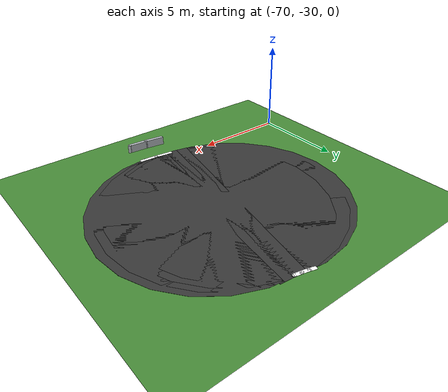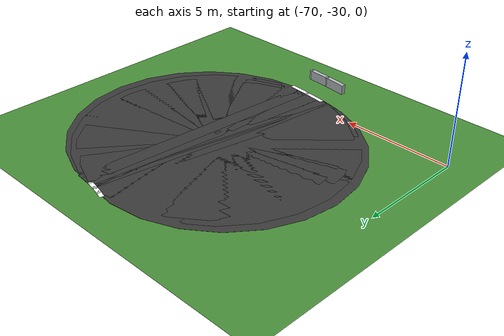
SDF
<sdf version="1.6">
 <world name="sem_silesia_ring_2026">
  <model name="ground_plane">
   <static>true</static>
   <link name="link">
    <collision name="collision">
     <geometry><plane><normal>0 0 1</normal><size>600 600</size></plane></geometry>
     <surface><friction><ode><mu>0.6</mu><mu2>0.6</mu2></ode></friction></surface>
    </collision>
    <visual name="visual">
     <geometry><plane><normal>0 0 1</normal><size>600 600</size></plane></geometry>
     <material><ambient>0.28 0.55 0.22 1</ambient><diffuse>0.28 0.55 0.22 1</diffuse></material>
    </visual>
   </link>
  </model>
  <model name="road_L_jnt84">
   <static>true</static>
   <pose>-62.5989 -24.7268 0.0030 0 0 0</pose>
   <link name="link">
    <visual name="v">
     <geometry><cylinder><radius>6.0000</radius><length>0.0060</length></cylinder></geometry>
     <material><ambient>0.22 0.22 0.22 1</ambient><diffuse>0.22 0.22 0.22 1</diffuse></material>
    </visual>
    <collision name="c">
     <geometry><cylinder><radius>6.0000</radius><length>0.0060</length></cylinder></geometry>
     <surface><friction><ode><mu>0.9</mu><mu2>0.9</mu2></ode></friction></surface>
    </collision>
   </link>
  </model>
  <model name="road_L_s84">
   <static>true</static>
   <pose>-62.3851 -24.7703 0.0030 0 0 6.0912</pose>
   <link name="link">
    <visual name="v">
     <geometry><box><size>0.6957 12.0000 0.0060</size></box></geometry>
     <material><ambient>0.22 0.22 0.22 1</ambient><diffuse>0.22 0.22 0.22 1</diffuse></material>
    </visual>
    <collision name="c">
     <geometry><box><size>0.6957 12.0000 0.0060</size></box></geometry>
     <surface><friction><ode><mu>0.9</mu><mu2>0.9</mu2></ode></friction></surface>
    </collision>
   </link>
  </model>
  <model name="road_L_jnt85">
   <static>true</static>
   <pose>-62.1706 -24.8101 0.0030 0 0 0</pose>
   <link name="link">
    <visual name="v">
     <geometry><cylinder><radius>6.0000</radius><length>0.0060</length></cylinder></geometry>
     <material><ambient>0.22 0.22 0.22 1</ambient><diffuse>0.22 0.22 0.22 1</diffuse></material>
    </visual>
    <collision name="c">
     <geometry><cylinder><radius>6.0000</radius><length>0.0060</length></cylinder></geometry>
     <surface><friction><ode><mu>0.9</mu><mu2>0.9</mu2></ode></friction></surface>
    </collision>
   </link>
  </model>
  <model name="road_L_s85">
   <static>true</static>
   <pose>-61.9554 -24.8461 0.0030 0 0 6.1261</pose>
   <link name="link">
    <visual name="v">
     <geometry><box><size>0.6957 12.0000 0.0060</size></box></geometry>
     <material><ambient>0.22 0.22 0.22 1</ambient><diffuse>0.22 0.22 0.22 1</diffuse></material>
    </visual>
    <collision name="c">
     <geometry><box><size>0.6957 12.0000 0.0060</size></box></geometry>
     <surface><friction><ode><mu>0.9</mu><mu2>0.9</mu2></ode></friction></surface>
    </collision>
   </link>
  </model>
  <model name="road_L_jnt86">
   <static>true</static>
   <pose>-61.7397 -24.8784 0.0030 0 0 0</pose>
   <link name="link">
    <visual name="v">
     <geometry><cylinder><radius>6.0000</radius><length>0.0060</length></cylinder></geometry>
     <material><ambient>0.22 0.22 0.22 1</ambient><diffuse>0.22 0.22 0.22 1</diffuse></material>
    </visual>
    <collision name="c">
     <geometry><cylinder><radius>6.0000</radius><length>0.0060</length></cylinder></geometry>
     <surface><friction><ode><mu>0.9</mu><mu2>0.9</mu2></ode></friction></surface>
    </collision>
   </link>
  </model>
  <model name="road_L_s86">
   <static>true</static>
   <pose>-61.5234 -24.9068 0.0030 0 0 6.1610</pose>
   <link name="link">
    <visual name="v">
     <geometry><box><size>0.6957 12.0000 0.0060</size></box></geometry>
     <material><ambient>0.22 0.22 0.22 1</ambient><diffuse>0.22 0.22 0.22 1</diffuse></material>
    </visual>
    <collision name="c">
     <geometry><box><size>0.6957 12.0000 0.0060</size></box></geometry>
     <surface><friction><ode><mu>0.9</mu><mu2>0.9</mu2></ode></friction></surface>
    </collision>
   </link>
  </model>
  <model name="road_L_jnt87">
   <static>true</static>
   <pose>-61.3066 -24.9315 0.0030 0 0 0</pose>
   <link name="link">
    <visual name="v">
     <geometry><cylinder><radius>6.0000</radius><length>0.0060</length></cylinder></geometry>
     <material><ambient>0.22 0.22 0.22 1</ambient><diffuse>0.22 0.22 0.22 1</diffuse></material>
    </visual>
    <collision name="c">
     <geometry><cylinder><radius>6.0000</radius><length>0.0060</length></cylinder></geometry>
     <surface><friction><ode><mu>0.9</mu><mu2>0.9</mu2></ode></friction></surface>
    </collision>
   </link>
  </model>
  <model name="road_L_s87">
   <static>true</static>
   <pose>-61.0894 -24.9524 0.0030 0 0 6.1959</pose>
   <link name="link">
    <visual name="v">
     <geometry><box><size>0.6957 12.0000 0.0060</size></box></geometry>
     <material><ambient>0.22 0.22 0.22 1</ambient><diffuse>0.22 0.22 0.22 1</diffuse></material>
    </visual>
    <collision name="c">
     <geometry><box><size>0.6957 12.0000 0.0060</size></box></geometry>
     <surface><friction><ode><mu>0.9</mu><mu2>0.9</mu2></ode></friction></surface>
    </collision>
   </link>
  </model>
  <model name="wl_Lo_s57">
   <static>true</static>
   <pose>-62.4017 -30.7426 0.0050 0 0 6.1523</pose>
   <link name="link">
    <visual name="v">
     <geometry><box><size>1.0185 0.2000 0.0040</size></box></geometry>
     <material><ambient>1 1 1 1</ambient><diffuse>1 1 1 1</diffuse></material>
    </visual>
    <collision name="c">
     <geometry><box><size>1.0185 0.2000 0.0040</size></box></geometry>
     <surface><friction><ode><mu>0.9</mu><mu2>0.9</mu2></ode></friction></surface>
    </collision>
   </link>
  </model>
  <model name="wl_Lo_jnt58">
   <static>true</static>
   <pose>-61.9233 -30.7992 0.0050 0 0 0</pose>
   <link name="link">
    <visual name="v">
     <geometry><cylinder><radius>0.1000</radius><length>0.0040</length></cylinder></geometry>
     <material><ambient>1 1 1 1</ambient><diffuse>1 1 1 1</diffuse></material>
    </visual>
    <collision name="c">
     <geometry><cylinder><radius>0.1000</radius><length>0.0040</length></cylinder></geometry>
     <surface><friction><ode><mu>0.9</mu><mu2>0.9</mu2></ode></friction></surface>
    </collision>
   </link>
  </model>
  <model name="wl_Lo_s58">
   <static>true</static>
   <pose>-61.4436 -30.8433 0.0050 0 0 6.2046</pose>
   <link name="link">
    <visual name="v">
     <geometry><box><size>1.0185 0.2000 0.0040</size></box></geometry>
     <material><ambient>1 1 1 1</ambient><diffuse>1 1 1 1</diffuse></material>
    </visual>
    <collision name="c">
     <geometry><box><size>1.0185 0.2000 0.0040</size></box></geometry>
     <surface><friction><ode><mu>0.9</mu><mu2>0.9</mu2></ode></friction></surface>
    </collision>
   </link>
  </model>
  <model name="wl_Li_s54">
   <static>true</static>
   <pose>-61.8745 -18.8282 0.0050 0 0 5.9952</pose>
   <link name="link">
    <visual name="v">
     <geometry><box><size>0.4008 0.2000 0.0040</size></box></geometry>
     <material><ambient>1 1 1 1</ambient><diffuse>1 1 1 1</diffuse></material>
    </visual>
    <collision name="c">
     <geometry><box><size>0.4008 0.2000 0.0040</size></box></geometry>
     <surface><friction><ode><mu>0.9</mu><mu2>0.9</mu2></ode></friction></surface>
    </collision>
   </link>
  </model>
  <model name="wl_Li_jnt55">
   <static>true</static>
   <pose>-61.7082 -18.8751 0.0050 0 0 0</pose>
   <link name="link">
    <visual name="v">
     <geometry><cylinder><radius>0.1000</radius><length>0.0040</length></cylinder></geometry>
     <material><ambient>1 1 1 1</ambient><diffuse>1 1 1 1</diffuse></material>
    </visual>
    <collision name="c">
     <geometry><cylinder><radius>0.1000</radius><length>0.0040</length></cylinder></geometry>
     <surface><friction><ode><mu>0.9</mu><mu2>0.9</mu2></ode></friction></surface>
    </collision>
   </link>
  </model>
  <model name="wl_Li_s55">
   <static>true</static>
   <pose>-61.5407 -18.9176 0.0050 0 0 6.0476</pose>
   <link name="link">
    <visual name="v">
     <geometry><box><size>0.4008 0.2000 0.0040</size></box></geometry>
     <material><ambient>1 1 1 1</ambient><diffuse>1 1 1 1</diffuse></material>
    </visual>
    <collision name="c">
     <geometry><box><size>0.4008 0.2000 0.0040</size></box></geometry>
     <surface><friction><ode><mu>0.9</mu><mu2>0.9</mu2></ode></friction></surface>
    </collision>
   </link>
  </model>
  <model name="wl_Li_jnt56">
   <static>true</static>
   <pose>-61.3722 -18.9558 0.0050 0 0 0</pose>
   <link name="link">
    <visual name="v">
     <geometry><cylinder><radius>0.1000</radius><length>0.0040</length></cylinder></geometry>
     <material><ambient>1 1 1 1</ambient><diffuse>1 1 1 1</diffuse></material>
    </visual>
    <collision name="c">
     <geometry><cylinder><radius>0.1000</radius><length>0.0040</length></cylinder></geometry>
     <surface><friction><ode><mu>0.9</mu><mu2>0.9</mu2></ode></friction></surface>
    </collision>
   </link>
  </model>
  <model name="wl_Li_s56">
   <static>true</static>
   <pose>-61.2028 -18.9895 0.0050 0 0 6.0999</pose>
   <link name="link">
    <visual name="v">
     <geometry><box><size>0.4008 0.2000 0.0040</size></box></geometry>
     <material><ambient>1 1 1 1</ambient><diffuse>1 1 1 1</diffuse></material>
    </visual>
    <collision name="c">
     <geometry><box><size>0.4008 0.2000 0.0040</size></box></geometry>
     <surface><friction><ode><mu>0.9</mu><mu2>0.9</mu2></ode></friction></surface>
    </collision>
   </link>
  </model>
  <model name="wl_Li_jnt57">
   <static>true</static>
   <pose>-61.0325 -19.0187 0.0050 0 0 0</pose>
   <link name="link">
    <visual name="v">
     <geometry><cylinder><radius>0.1000</radius><length>0.0040</length></cylinder></geometry>
     <material><ambient>1 1 1 1</ambient><diffuse>1 1 1 1</diffuse></material>
    </visual>
    <collision name="c">
     <geometry><cylinder><radius>0.1000</radius><length>0.0040</length></cylinder></geometry>
     <surface><friction><ode><mu>0.9</mu><mu2>0.9</mu2></ode></friction></surface>
    </collision>
   </link>
  </model>
  <model name="arm_Lo_s57">
   <static>true</static>
   <pose>-62.5714 -32.0315 0.2250 0 0 6.1523</pose>
   <link name="link">
    <visual name="v">
     <geometry><box><size>1.0866 0.2000 0.4500</size></box></geometry>
     <material><ambient>0.70 0.72 0.74 1</ambient><diffuse>0.70 0.72 0.74 1</diffuse></material>
    </visual>
    <collision name="c">
     <geometry><box><size>1.0866 0.2000 0.4500</size></box></geometry>
     <surface><friction><ode><mu>0.9</mu><mu2>0.9</mu2></ode></friction></surface>
    </collision>
   </link>
  </model>
  <model name="arm_Lo_jnt58">
   <static>true</static>
   <pose>-62.0592 -32.0921 0.2250 0 0 0</pose>
   <link name="link">
    <visual name="v">
     <geometry><cylinder><radius>0.1000</radius><length>0.4500</length></cylinder></geometry>
     <material><ambient>0.70 0.72 0.74 1</ambient><diffuse>0.70 0.72 0.74 1</diffuse></material>
    </visual>
    <collision name="c">
     <geometry><cylinder><radius>0.1000</radius><length>0.4500</length></cylinder></geometry>
     <surface><friction><ode><mu>0.9</mu><mu2>0.9</mu2></ode></friction></surface>
    </collision>
   </link>
  </model>
  <model name="arm_Lo_s58">
   <static>true</static>
   <pose>-61.5456 -32.1393 0.2250 0 0 6.2046</pose>
   <link name="link">
    <visual name="v">
     <geometry><box><size>1.0866 0.2000 0.4500</size></box></geometry>
     <material><ambient>0.70 0.72 0.74 1</ambient><diffuse>0.70 0.72 0.74 1</diffuse></material>
    </visual>
    <collision name="c">
     <geometry><box><size>1.0866 0.2000 0.4500</size></box></geometry>
     <surface><friction><ode><mu>0.9</mu><mu2>0.9</mu2></ode></friction></surface>
    </collision>
   </link>
  </model>
  <model name="arm_Lo_jnt59">
   <static>true</static>
   <pose>-61.0310 -32.1730 0.2250 0 0 0</pose>
   <link name="link">
    <visual name="v">
     <geometry><cylinder><radius>0.1000</radius><length>0.4500</length></cylinder></geometry>
     <material><ambient>0.70 0.72 0.74 1</ambient><diffuse>0.70 0.72 0.74 1</diffuse></material>
    </visual>
    <collision name="c">
     <geometry><cylinder><radius>0.1000</radius><length>0.4500</length></cylinder></geometry>
     <surface><friction><ode><mu>0.9</mu><mu2>0.9</mu2></ode></friction></surface>
    </collision>
   </link>
  </model>
 </world>
</sdf>
